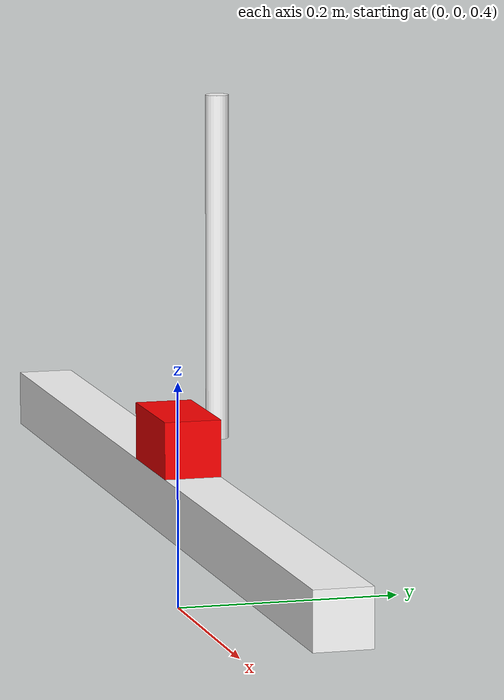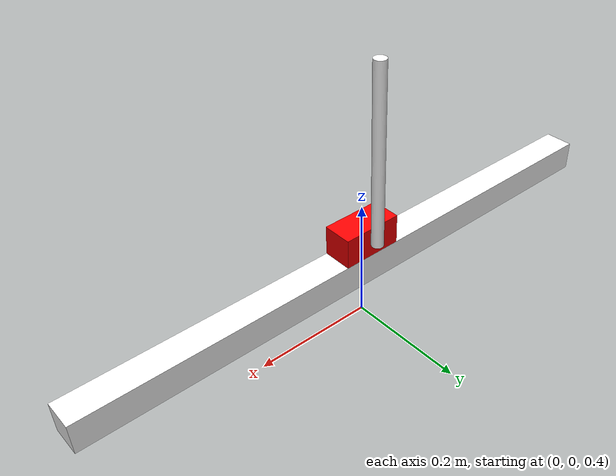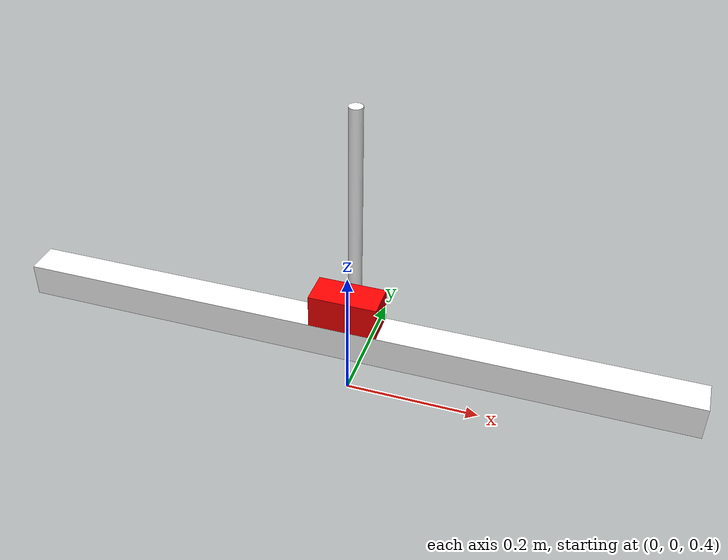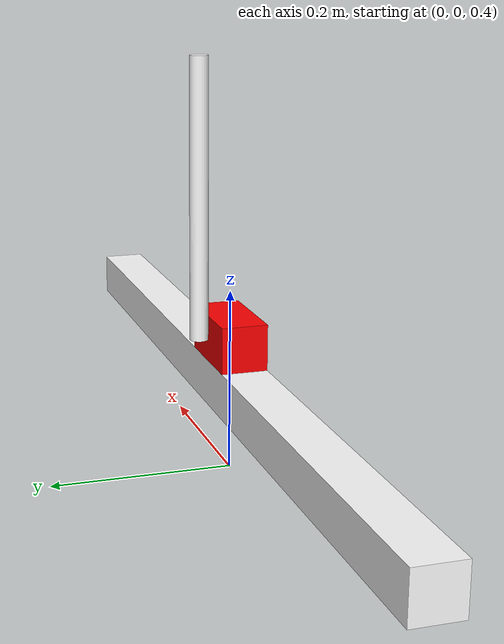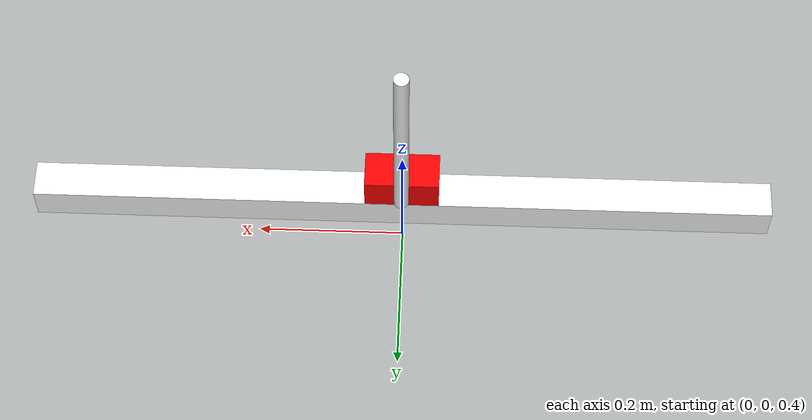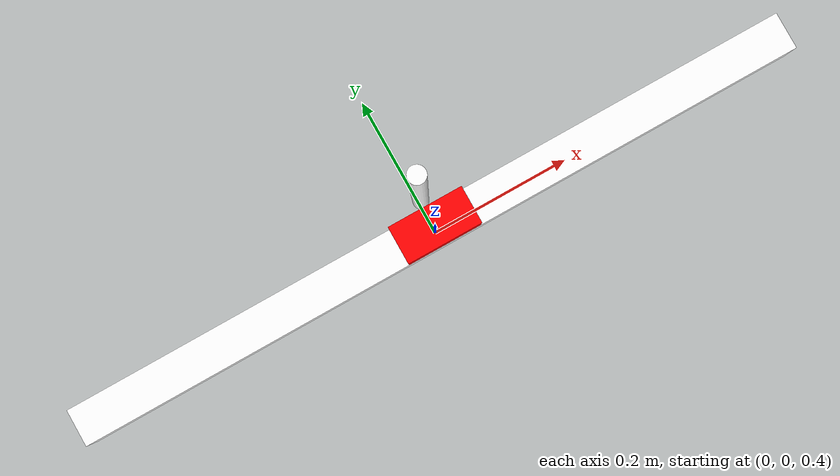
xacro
<?xml version="1.0"?>
<robot xmlns:xacro="http://www.ros.org/wiki/xacro" name="pendulum_on_cart">

  <!-- ==================== PROPERTY DEFINITIONS ==================== -->
  <!-- Cart Properties -->
  <xacro:property name="cart_mass" value="1.0"/>
  <xacro:property name="cart_length" value="0.1"/>
  <xacro:property name="cart_width" value="0.05"/>
  <xacro:property name="cart_height" value="0.05"/>

  <!-- Pendulum Properties -->
  <xacro:property name="pend_mass" value="0.02"/>
  <xacro:property name="pend_radius" value="0.01"/>
  <xacro:property name="pend_length" value="0.3"/>

  <!-- SlideBar Properties -->
  <xacro:property name="bar_mass" value="2.0"/>
  <xacro:property name="bar_length" value="1.0"/>
  <xacro:property name="bar_width" value="0.05"/>
  <xacro:property name="bar_height" value="0.05"/>
  <xacro:property name="bar_offset_from_world" value="0.5"/>

  <!-- ==================== INERTIA MACROS ==================== -->
  <!-- Solid Box Inertia Macro -->
  <xacro:macro name="box_inertia" params="m x y z xyz rpy">
    <inertial>
      <origin xyz="${xyz}" rpy="${rpy}"/>
      <mass value="${m}"/>
      <inertia
        ixx="${(1/12) * m * (y*y + z*z)}" ixy="0.0" ixz="0.0"
        iyy="${(1/12) * m * (x*x + z*z)}" iyz="0.0"
        izz="${(1/12) * m * (x*x + y*y)}"/>
    </inertial>
  </xacro:macro>

  <!-- Solid Cylinder Inertia Macro (Aligned along Z axis) -->
  <xacro:macro name="cylinder_inertia" params="m r h xyz rpy">
    <inertial>
      <origin xyz="${xyz}" rpy="${rpy}"/>
      <mass value="${m}"/>
      <inertia
        ixx="${(1/12) * m * (3*r*r + h*h)}" ixy="0.0" ixz="0.0"
        iyy="${(1/12) * m * (3*r*r + h*h)}" iyz="0.0"
        izz="${(1/2) * m * r*r}"/>
    </inertial>
  </xacro:macro>

  <!-- ==================== LINKS & JOINTS ==================== -->
  <link name="world"/>

  <link name="slideBar">
    <visual>
      <geometry>
        <box size="${bar_length} ${bar_width} ${bar_height}"/>
      </geometry>
      <origin xyz="0 0 0"/>
      <material name="white">
        <color rgba="1 1 1 1"/>
      </material>
    </visual>
    <xacro:box_inertia m="${bar_mass}" x="${bar_length}" y="${bar_width}" z="${bar_height}" xyz="0 0 0" rpy="0 0 0"/>
  </link>

  <link name="cart">
    <collision>
      <geometry>
        <box size="${cart_length} ${cart_width} ${cart_height}"/>
      </geometry>
      <origin xyz="0 0 0"/>
    </collision>
    <visual>
      <geometry>
        <box size="${cart_length} ${cart_width} ${cart_height}"/>
      </geometry>
      <origin xyz="0 0 0"/>
      <material name="red">
        <color rgba="1 0 0 1"/>
      </material>
    </visual>
    <xacro:box_inertia m="${cart_mass}" x="${cart_length}" y="${cart_width}" z="${cart_height}" xyz="0 0 0" rpy="0 0 0"/>
  </link>

  <link name="pendulum">
    <collision>
      <geometry>
        <cylinder radius="${pend_radius}" length="${pend_length}"/>
      </geometry>
      <origin xyz="0 0 ${pend_length / 2}"/>
    </collision>
    <visual>
      <geometry>
        <cylinder radius="${pend_radius}" length="${pend_length}"/>
      </geometry>
      <origin xyz="0 0 ${pend_length / 2}"/>
      <material name="white">
        <color rgba="1 1 1 1"/>
      </material>
    </visual>
    <xacro:cylinder_inertia m="${pend_mass}" r="${pend_radius}" h="${pend_length}" xyz="0 0 ${pend_length / 2}" rpy="0 0 0"/>
  </link>

  <joint name="world_to_base" type="fixed">
    <origin rpy="0 0 0" xyz="0 0 ${bar_offset_from_world}"/>
    <parent link="world"/>
    <child link="slideBar"/>
  </joint>

  <joint name="slider_to_cart" type="prismatic">
    <axis xyz="1 0 0"/>
    <origin xyz="0 0 ${(bar_height / 2) + (cart_height / 2)}"/>
    <parent link="slideBar"/>
    <child link="cart"/>
    <limit effort="1000.0" lower="${-(bar_length / 2) + 0.07}" upper="${(bar_length / 2) - 0.07}" velocity="5.0"/>
    <dynamics damping="0.0" friction="0.0"/>
  </joint>

  <joint name="cart_to_pendulum" type="continuous">
    <axis xyz="0 1 0"/>
    <origin xyz="0 ${(cart_width / 2) + pend_radius} 0" rpy="0 0 0"/>
    <parent link="cart"/>
    <child link="pendulum"/>
    <dynamics damping="0.0" friction="0.0"/>
  </joint>

  <!-- ==================== GAZEBO ROS 2 CONTROL ==================== -->
  <ros2_control name="GazeboSystem" type="system">
    <hardware>
      <plugin>gz_ros2_control/GazeboSimSystem</plugin>
    </hardware>
    <joint name="slider_to_cart">
      <command_interface name="effort"/>
      <state_interface name="position"/>
      <state_interface name="velocity"/>
      <state_interface name="effort"/>
    </joint>
    <joint name="cart_to_pendulum">
      <state_interface name="position">
        <param name="initial_value">3.14</param>
      </state_interface>
      <state_interface name="velocity"/>
      <state_interface name="effort"/>
    </joint>
  </ros2_control>

  <gazebo>
    <plugin filename="gz_ros2_control-system" name="gz_ros2_control::GazeboSimROS2ControlPlugin">
      <parameters>/home/khai/cartpole_ws/src/cartpole_control/config/cartpole_controllers.yaml</parameters>
    </plugin>
  </gazebo>

</robot>
